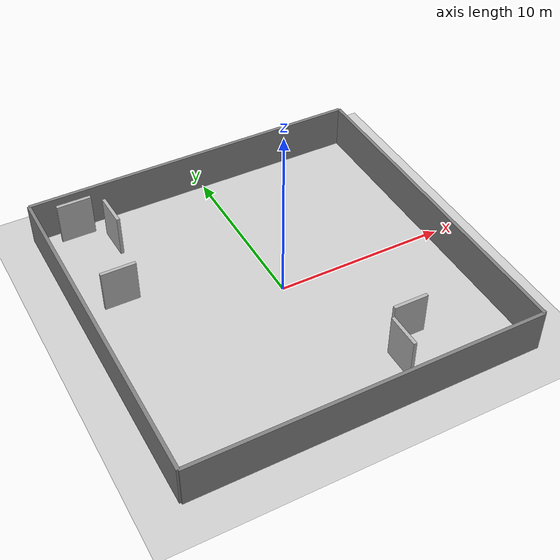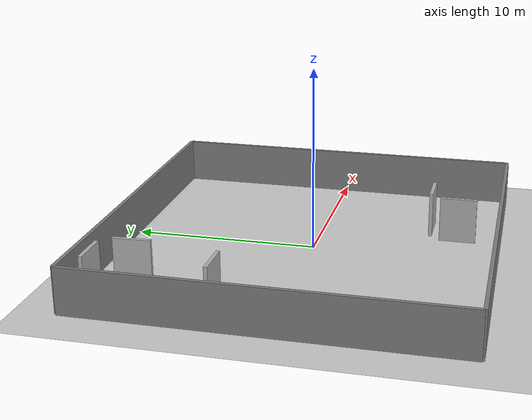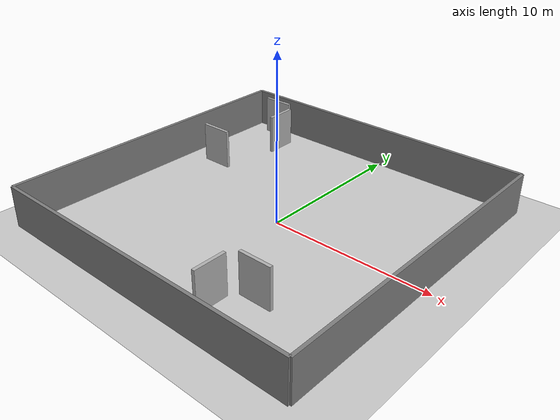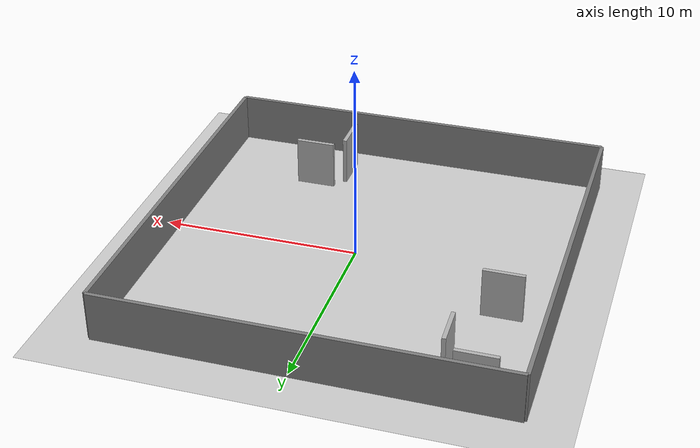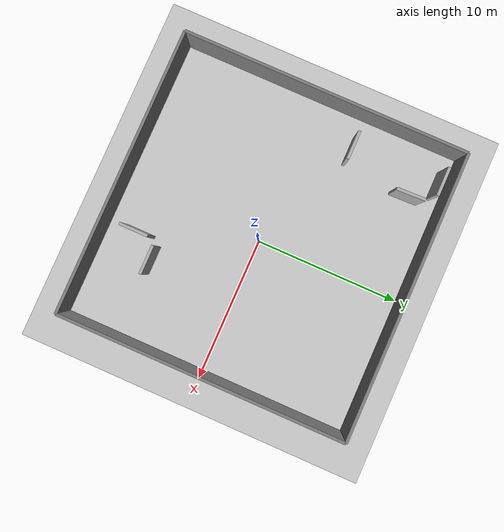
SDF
<?xml version="1.0"?>
<sdf version="1.7">
  <world name="maze_world">

    <!-- Physics settings -->
    <physics name="1ms" type="ode">
      <max_step_size>0.001</max_step_size>
      <real_time_factor>1.0</real_time_factor>
    </physics>

    <!-- Plugin for ROS integration -->
    <plugin filename="gz-sim-physics-system" name="gz::sim::systems::Physics"></plugin>
    <plugin filename="gz-sim-user-commands-system" name="gz::sim::systems::UserCommands"></plugin>
    <plugin filename="gz-sim-scene-broadcaster-system" name="gz::sim::systems::SceneBroadcaster"></plugin>
    <plugin filename="gz-sim-contact-system" name="gz::sim::systems::Contact"></plugin>

    <!-- Sun -->
    <light type="directional" name="sun">
      <cast_shadows>true</cast_shadows>
      <pose>0 0 10 0 0 0</pose>
      <diffuse>0.8 0.8 0.8 1</diffuse>
      <specular>0.2 0.2 0.2 1</specular>
      <attenuation>
        <range>1000</range>
        <constant>0.9</constant>
        <linear>0.01</linear>
        <quadratic>0.001</quadratic>
      </attenuation>
      <direction>-0.5 0.1 -0.9</direction>
    </light>

    <!-- Ground Plane -->
    <model name="ground_plane">
      <static>true</static>
      <link name="link">
        <collision name="collision">
          <geometry>
            <plane>
              <normal>0 0 1</normal>
              <size>100 100</size>
            </plane>
          </geometry>
        </collision>
        <visual name="visual">
          <geometry>
            <plane>
              <normal>0 0 1</normal>
              <size>100 100</size>
            </plane>
          </geometry>
          <material>
            <ambient>0.8 0.8 0.8 1</ambient>
            <diffuse>0.8 0.8 0.8 1</diffuse>
            <specular>0.8 0.8 0.8 1</specular>
          </material>
        </visual>
      </link>
    </model>

    <!-- Maze walls -->
    <model name="maze">
      <static>true</static>
      <pose>-0.530015 0.133481 0 0 0 0</pose>

      <!-- Wall 1 -->
      <link name="wall_1">
        <pose>-7.67452 9.2343 1.25 0 0 0</pose>
        <collision name="collision">
          <geometry>
            <box>
              <size>2.0 0.2 2.5</size>
            </box>
          </geometry>
        </collision>
        <visual name="visual">
          <geometry>
            <box>
              <size>2.0 0.2 2.5</size>
            </box>
          </geometry>
          <material>
            <ambient>0.7 0.7 0.7 1</ambient>
            <diffuse>0.7 0.7 0.7 1</diffuse>
          </material>
        </visual>
      </link>

      <!-- Wall 2 -->
      <link name="wall_2">
        <pose>-6.0748 7.64452 1.25 0 0 -1.53992</pose>
        <collision name="collision">
          <geometry>
            <box>
              <size>2.0 0.2 2.5</size>
            </box>
          </geometry>
        </collision>
        <visual name="visual">
          <geometry>
            <box>
              <size>2.0 0.2 2.5</size>
            </box>
          </geometry>
          <material>
            <ambient>0.7 0.7 0.7 1</ambient>
            <diffuse>0.7 0.7 0.7 1</diffuse>
          </material>
        </visual>
      </link>

      <!-- Wall 3 -->
      <link name="wall_3">
        <pose>-7.52856 3.02065 1.25 0 0 0</pose>
        <collision name="collision">
          <geometry>
            <box>
              <size>2.0 0.2 2.5</size>
            </box>
          </geometry>
        </collision>
        <visual name="visual">
          <geometry>
            <box>
              <size>2.0 0.2 2.5</size>
            </box>
          </geometry>
          <material>
            <ambient>0.7 0.7 0.7 1</ambient>
            <diffuse>0.7 0.7 0.7 1</diffuse>
          </material>
        </visual>
      </link>

      <!-- Wall 4 -->
      <link name="wall_4">
        <pose>3.14644 -7.70646 1.25 0 0 1.5708</pose>
        <collision name="collision">
          <geometry>
            <box>
              <size>2.0 0.2 2.5</size>
            </box>
          </geometry>
        </collision>
        <visual name="visual">
          <geometry>
            <box>
              <size>2.0 0.2 2.5</size>
            </box>
          </geometry>
          <material>
            <ambient>0.7 0.7 0.7 1</ambient>
            <diffuse>0.7 0.7 0.7 1</diffuse>
          </material>
        </visual>
      </link>

      <!-- Additional maze walls -->
      <link name="wall_5">
        <pose>4.57144 -6.15646 1.25 0 0 0</pose>
        <collision name="collision">
          <geometry>
            <box>
              <size>2.0 0.2 2.5</size>
            </box>
          </geometry>
        </collision>
        <visual name="visual">
          <geometry>
            <box>
              <size>2.0 0.2 2.5</size>
            </box>
          </geometry>
          <material>
            <ambient>0.7 0.7 0.7 1</ambient>
            <diffuse>0.7 0.7 0.7 1</diffuse>
          </material>
        </visual>
      </link>

      <!-- Outer boundary walls -->
      <link name="boundary_north">
        <pose>0 10 1.25 0 0 0</pose>
        <collision name="collision">
          <geometry>
            <box>
              <size>20 0.2 2.5</size>
            </box>
          </geometry>
        </collision>
        <visual name="visual">
          <geometry>
            <box>
              <size>20 0.2 2.5</size>
            </box>
          </geometry>
          <material>
            <ambient>0.5 0.5 0.5 1</ambient>
            <diffuse>0.5 0.5 0.5 1</diffuse>
          </material>
        </visual>
      </link>

      <link name="boundary_south">
        <pose>0 -10 1.25 0 0 0</pose>
        <collision name="collision">
          <geometry>
            <box>
              <size>20 0.2 2.5</size>
            </box>
          </geometry>
        </collision>
        <visual name="visual">
          <geometry>
            <box>
              <size>20 0.2 2.5</size>
            </box>
          </geometry>
          <material>
            <ambient>0.5 0.5 0.5 1</ambient>
            <diffuse>0.5 0.5 0.5 1</diffuse>
          </material>
        </visual>
      </link>

      <link name="boundary_east">
        <pose>10 0 1.25 0 0 1.5708</pose>
        <collision name="collision">
          <geometry>
            <box>
              <size>20 0.2 2.5</size>
            </box>
          </geometry>
        </collision>
        <visual name="visual">
          <geometry>
            <box>
              <size>20 0.2 2.5</size>
            </box>
          </geometry>
          <material>
            <ambient>0.5 0.5 0.5 1</ambient>
            <diffuse>0.5 0.5 0.5 1</diffuse>
          </material>
        </visual>
      </link>

      <link name="boundary_west">
        <pose>-10 0 1.25 0 0 1.5708</pose>
        <collision name="collision">
          <geometry>
            <box>
              <size>20 0.2 2.5</size>
            </box>
          </geometry>
        </collision>
        <visual name="visual">
          <geometry>
            <box>
              <size>20 0.2 2.5</size>
            </box>
          </geometry>
          <material>
            <ambient>0.5 0.5 0.5 1</ambient>
            <diffuse>0.5 0.5 0.5 1</diffuse>
          </material>
        </visual>
      </link>
    </model>

  </world>
</sdf>
